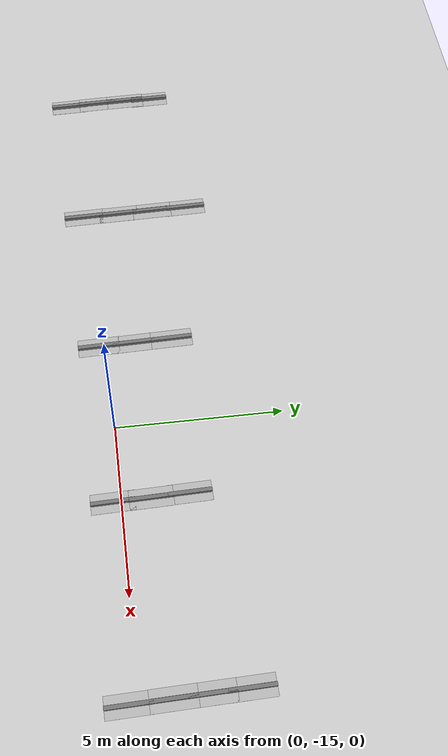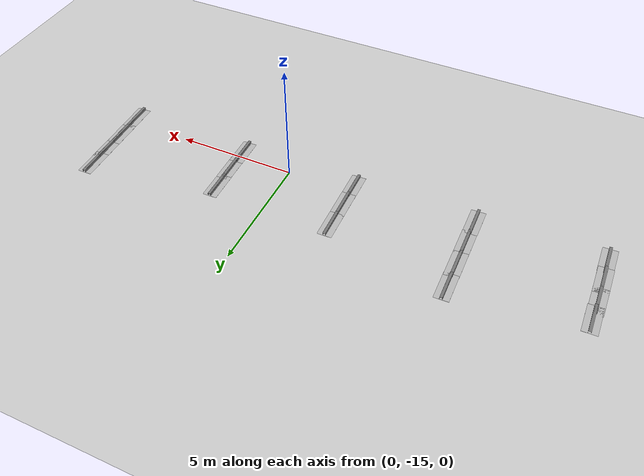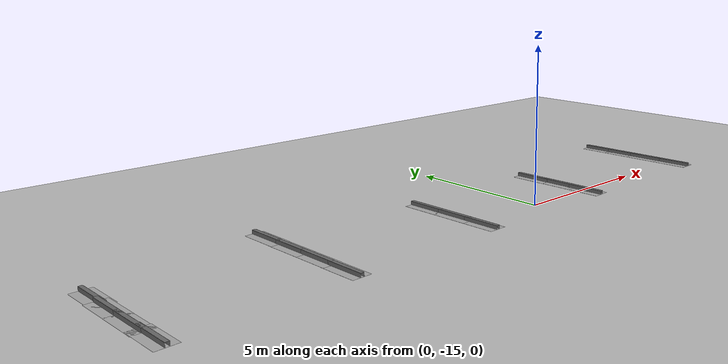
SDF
<sdf version="1.7">
 <world name="default">
  <model name="ground_plane">
   <static>1</static>
   <link name="link">
    <collision name="collision">
     <geometry><plane><normal>0 0 1</normal><size>100 100</size></plane></geometry>
     <surface>
      <contact><collide_bitmask>65535</collide_bitmask></contact>
      <friction><ode><mu>100</mu><mu2>50</mu2></ode></friction>
     </surface>
    </collision>
    <visual name="visual">
     <cast_shadows>0</cast_shadows>
     <geometry><plane><normal>0 0 1</normal><size>100 100</size></plane></geometry>
     <material>
      <script><uri>file://media/materials/scripts/gazebo.material</uri><name>Gazebo/Grey</name></script>
     </material>
    </visual>
   </link>
  </model>
  <model name="frc2016_rockwall_clone">
   <static>1</static>
   <link name="link">
    <inertial>
     <mass>10</mass>
     <pose>0 0 0.08974 0 -0 0</pose>
     <inertia><ixx>0.327091</ixx><ixy>0</ixy><ixz>0</ixz><iyy>1.37417</iyy><iyz>0</iyz><izz>1.64109</izz></inertia>
    </inertial>
    <visual name="platform">
     <pose>0 0 0.06432 0 -0 0</pose>
     <geometry><box><size>1.27 0.5969 0.003175</size></box></geometry>
    </visual>
    <collision name="platform">
     <pose>0 0 0.06432 0 -0 0</pose>
     <geometry><box><size>1.27 0.5969 0.003175</size></box></geometry>
    </collision>
    <visual name="up1">
     <pose>0 0.05166 0.12537 0 -0 0</pose>
     <geometry><box><size>1.27 0.00462 0.11892</size></box></geometry>
     <material><ambient>0.46 0.46 0.46 1</ambient><diffuse>0.46 0.46 0.46 1</diffuse></material>
    </visual>
    <collision name="up1">
     <pose>0 0.05166 0.12537 0 -0 0</pose>
     <geometry><box><size>1.27 0.00462 0.11892</size></box></geometry>
    </collision>
    <visual name="up2">
     <pose>0 -0.05801 0.12537 0 -0 0</pose>
     <geometry><box><size>1.27 0.00462 0.11892</size></box></geometry>
     <material><ambient>0.46 0.46 0.46 1</ambient><diffuse>0.46 0.46 0.46 1</diffuse></material>
    </visual>
    <collision name="up2">
     <pose>0 -0.05801 0.12537 0 -0 0</pose>
     <geometry><box><size>1.27 0.00462 0.11892</size></box></geometry>
    </collision>
    <visual name="top">
     <pose>0 -0.00249 0.18252 0 -0 0</pose>
     <geometry><box><size>1.27 0.1143 0.00462</size></box></geometry>
     <material><ambient>0.46 0.46 0.46 1</ambient><diffuse>0.46 0.46 0.46 1</diffuse></material>
    </visual>
    <collision name="top">
     <pose>0 -0.00249 0.18252 0 -0 0</pose>
     <geometry><box><size>1.27 0.1143 0.00462</size></box></geometry>
    </collision>
   </link>
   <pose>7.6081 -12.0702 0 0 -0 1.59626</pose>
  </model>
  <model name="frc2016_rockwall_clone_0">
   <static>1</static>
   <link name="link">
    <inertial>
     <mass>10</mass>
     <pose>0 0 0.08974 0 -0 0</pose>
     <inertia><ixx>0.327091</ixx><ixy>0</ixy><ixz>0</ixz><iyy>1.37417</iyy><iyz>0</iyz><izz>1.64109</izz></inertia>
    </inertial>
    <visual name="platform">
     <pose>0 0 0.06432 0 -0 0</pose>
     <geometry><box><size>1.27 0.5969 0.003175</size></box></geometry>
    </visual>
    <collision name="platform">
     <pose>0 0 0.06432 0 -0 0</pose>
     <geometry><box><size>1.27 0.5969 0.003175</size></box></geometry>
    </collision>
    <visual name="up1">
     <pose>0 0.05166 0.12537 0 -0 0</pose>
     <geometry><box><size>1.27 0.00462 0.11892</size></box></geometry>
     <material><ambient>0.46 0.46 0.46 1</ambient><diffuse>0.46 0.46 0.46 1</diffuse></material>
    </visual>
    <collision name="up1">
     <pose>0 0.05166 0.12537 0 -0 0</pose>
     <geometry><box><size>1.27 0.00462 0.11892</size></box></geometry>
    </collision>
    <visual name="up2">
     <pose>0 -0.05801 0.12537 0 -0 0</pose>
     <geometry><box><size>1.27 0.00462 0.11892</size></box></geometry>
     <material><ambient>0.46 0.46 0.46 1</ambient><diffuse>0.46 0.46 0.46 1</diffuse></material>
    </visual>
    <collision name="up2">
     <pose>0 -0.05801 0.12537 0 -0 0</pose>
     <geometry><box><size>1.27 0.00462 0.11892</size></box></geometry>
    </collision>
    <visual name="top">
     <pose>0 -0.00249 0.18252 0 -0 0</pose>
     <geometry><box><size>1.27 0.1143 0.00462</size></box></geometry>
     <material><ambient>0.46 0.46 0.46 1</ambient><diffuse>0.46 0.46 0.46 1</diffuse></material>
    </visual>
    <collision name="top">
     <pose>0 -0.00249 0.18252 0 -0 0</pose>
     <geometry><box><size>1.27 0.1143 0.00462</size></box></geometry>
    </collision>
   </link>
   <pose>7.63123 -13.0973 0 0 -0 1.59626</pose>
  </model>
  <model name="frc2016_rockwall_clone_1">
   <static>1</static>
   <link name="link">
    <inertial>
     <mass>10</mass>
     <pose>0 0 0.08974 0 -0 0</pose>
     <inertia><ixx>0.327091</ixx><ixy>0</ixy><ixz>0</ixz><iyy>1.37417</iyy><iyz>0</iyz><izz>1.64109</izz></inertia>
    </inertial>
    <visual name="platform">
     <pose>0 0 0.06432 0 -0 0</pose>
     <geometry><box><size>1.27 0.5969 0.003175</size></box></geometry>
    </visual>
    <collision name="platform">
     <pose>0 0 0.06432 0 -0 0</pose>
     <geometry><box><size>1.27 0.5969 0.003175</size></box></geometry>
    </collision>
    <visual name="up1">
     <pose>0 0.05166 0.12537 0 -0 0</pose>
     <geometry><box><size>1.27 0.00462 0.11892</size></box></geometry>
     <material><ambient>0.46 0.46 0.46 1</ambient><diffuse>0.46 0.46 0.46 1</diffuse></material>
    </visual>
    <collision name="up1">
     <pose>0 0.05166 0.12537 0 -0 0</pose>
     <geometry><box><size>1.27 0.00462 0.11892</size></box></geometry>
    </collision>
    <visual name="up2">
     <pose>0 -0.05801 0.12537 0 -0 0</pose>
     <geometry><box><size>1.27 0.00462 0.11892</size></box></geometry>
     <material><ambient>0.46 0.46 0.46 1</ambient><diffuse>0.46 0.46 0.46 1</diffuse></material>
    </visual>
    <collision name="up2">
     <pose>0 -0.05801 0.12537 0 -0 0</pose>
     <geometry><box><size>1.27 0.00462 0.11892</size></box></geometry>
    </collision>
    <visual name="top">
     <pose>0 -0.00249 0.18252 0 -0 0</pose>
     <geometry><box><size>1.27 0.1143 0.00462</size></box></geometry>
     <material><ambient>0.46 0.46 0.46 1</ambient><diffuse>0.46 0.46 0.46 1</diffuse></material>
    </visual>
    <collision name="top">
     <pose>0 -0.00249 0.18252 0 -0 0</pose>
     <geometry><box><size>1.27 0.1143 0.00462</size></box></geometry>
    </collision>
   </link>
   <pose>7.65475 -14.1018 0 0 -0 1.59626</pose>
  </model>
  <model name="frc2016_rockwall_clone_2">
   <static>1</static>
   <link name="link">
    <inertial>
     <mass>10</mass>
     <pose>0 0 0.08974 0 -0 0</pose>
     <inertia><ixx>0.327091</ixx><ixy>0</ixy><ixz>0</ixz><iyy>1.37417</iyy><iyz>0</iyz><izz>1.64109</izz></inertia>
    </inertial>
    <visual name="platform">
     <pose>0 0 0.06432 0 -0 0</pose>
     <geometry><box><size>1.27 0.5969 0.003175</size></box></geometry>
    </visual>
    <collision name="platform">
     <pose>0 0 0.06432 0 -0 0</pose>
     <geometry><box><size>1.27 0.5969 0.003175</size></box></geometry>
    </collision>
    <visual name="up1">
     <pose>0 0.05166 0.12537 0 -0 0</pose>
     <geometry><box><size>1.27 0.00462 0.11892</size></box></geometry>
     <material><ambient>0.46 0.46 0.46 1</ambient><diffuse>0.46 0.46 0.46 1</diffuse></material>
    </visual>
    <collision name="up1">
     <pose>0 0.05166 0.12537 0 -0 0</pose>
     <geometry><box><size>1.27 0.00462 0.11892</size></box></geometry>
    </collision>
    <visual name="up2">
     <pose>0 -0.05801 0.12537 0 -0 0</pose>
     <geometry><box><size>1.27 0.00462 0.11892</size></box></geometry>
     <material><ambient>0.46 0.46 0.46 1</ambient><diffuse>0.46 0.46 0.46 1</diffuse></material>
    </visual>
    <collision name="up2">
     <pose>0 -0.05801 0.12537 0 -0 0</pose>
     <geometry><box><size>1.27 0.00462 0.11892</size></box></geometry>
    </collision>
    <visual name="top">
     <pose>0 -0.00249 0.18252 0 -0 0</pose>
     <geometry><box><size>1.27 0.1143 0.00462</size></box></geometry>
     <material><ambient>0.46 0.46 0.46 1</ambient><diffuse>0.46 0.46 0.46 1</diffuse></material>
    </visual>
    <collision name="top">
     <pose>0 -0.00249 0.18252 0 -0 0</pose>
     <geometry><box><size>1.27 0.1143 0.00462</size></box></geometry>
    </collision>
   </link>
   <pose>7.68671 -15.2564 0 0 -0 1.59626</pose>
  </model>
  <model name="frc2016_rockwall_clone_8">
   <static>1</static>
   <link name="link">
    <inertial>
     <mass>10</mass>
     <pose>0 0 0.08974 0 -0 0</pose>
     <inertia><ixx>0.327091</ixx><ixy>0</ixy><ixz>0</ixz><iyy>1.37417</iyy><iyz>0</iyz><izz>1.64109</izz></inertia>
    </inertial>
    <visual name="platform">
     <pose>0 0 0.06432 0 -0 0</pose>
     <geometry><box><size>1.27 0.5969 0.003175</size></box></geometry>
    </visual>
    <collision name="platform">
     <pose>0 0 0.06432 0 -0 0</pose>
     <geometry><box><size>1.27 0.5969 0.003175</size></box></geometry>
    </collision>
    <visual name="up1">
     <pose>0 0.05166 0.12537 0 -0 0</pose>
     <geometry><box><size>1.27 0.00462 0.11892</size></box></geometry>
     <material><ambient>0.46 0.46 0.46 1</ambient><diffuse>0.46 0.46 0.46 1</diffuse></material>
    </visual>
    <collision name="up1">
     <pose>0 0.05166 0.12537 0 -0 0</pose>
     <geometry><box><size>1.27 0.00462 0.11892</size></box></geometry>
    </collision>
    <visual name="up2">
     <pose>0 -0.05801 0.12537 0 -0 0</pose>
     <geometry><box><size>1.27 0.00462 0.11892</size></box></geometry>
     <material><ambient>0.46 0.46 0.46 1</ambient><diffuse>0.46 0.46 0.46 1</diffuse></material>
    </visual>
    <collision name="up2">
     <pose>0 -0.05801 0.12537 0 -0 0</pose>
     <geometry><box><size>1.27 0.00462 0.11892</size></box></geometry>
    </collision>
    <visual name="top">
     <pose>0 -0.00249 0.18252 0 -0 0</pose>
     <geometry><box><size>1.27 0.1143 0.00462</size></box></geometry>
     <material><ambient>0.46 0.46 0.46 1</ambient><diffuse>0.46 0.46 0.46 1</diffuse></material>
    </visual>
    <collision name="top">
     <pose>0 -0.00249 0.18252 0 -0 0</pose>
     <geometry><box><size>1.27 0.1143 0.00462</size></box></geometry>
    </collision>
   </link>
   <pose>2.25442 -13.0397 0 0 -0 1.59626</pose>
  </model>
  <model name="frc2016_rockwall_clone_9">
   <static>1</static>
   <link name="link">
    <inertial>
     <mass>10</mass>
     <pose>0 0 0.08974 0 -0 0</pose>
     <inertia><ixx>0.327091</ixx><ixy>0</ixy><ixz>0</ixz><iyy>1.37417</iyy><iyz>0</iyz><izz>1.64109</izz></inertia>
    </inertial>
    <visual name="platform">
     <pose>0 0 0.06432 0 -0 0</pose>
     <geometry><box><size>1.27 0.5969 0.003175</size></box></geometry>
    </visual>
    <collision name="platform">
     <pose>0 0 0.06432 0 -0 0</pose>
     <geometry><box><size>1.27 0.5969 0.003175</size></box></geometry>
    </collision>
    <visual name="up1">
     <pose>0 0.05166 0.12537 0 -0 0</pose>
     <geometry><box><size>1.27 0.00462 0.11892</size></box></geometry>
     <material><ambient>0.46 0.46 0.46 1</ambient><diffuse>0.46 0.46 0.46 1</diffuse></material>
    </visual>
    <collision name="up1">
     <pose>0 0.05166 0.12537 0 -0 0</pose>
     <geometry><box><size>1.27 0.00462 0.11892</size></box></geometry>
    </collision>
    <visual name="up2">
     <pose>0 -0.05801 0.12537 0 -0 0</pose>
     <geometry><box><size>1.27 0.00462 0.11892</size></box></geometry>
     <material><ambient>0.46 0.46 0.46 1</ambient><diffuse>0.46 0.46 0.46 1</diffuse></material>
    </visual>
    <collision name="up2">
     <pose>0 -0.05801 0.12537 0 -0 0</pose>
     <geometry><box><size>1.27 0.00462 0.11892</size></box></geometry>
    </collision>
    <visual name="top">
     <pose>0 -0.00249 0.18252 0 -0 0</pose>
     <geometry><box><size>1.27 0.1143 0.00462</size></box></geometry>
     <material><ambient>0.46 0.46 0.46 1</ambient><diffuse>0.46 0.46 0.46 1</diffuse></material>
    </visual>
    <collision name="top">
     <pose>0 -0.00249 0.18252 0 -0 0</pose>
     <geometry><box><size>1.27 0.1143 0.00462</size></box></geometry>
    </collision>
   </link>
   <pose>2.28903 -14.1449 0 0 -0 1.59626</pose>
  </model>
  <model name="frc2016_rockwall_clone_10">
   <static>1</static>
   <link name="link">
    <inertial>
     <mass>10</mass>
     <pose>0 0 0.08974 0 -0 0</pose>
     <inertia><ixx>0.327091</ixx><ixy>0</ixy><ixz>0</ixz><iyy>1.37417</iyy><iyz>0</iyz><izz>1.64109</izz></inertia>
    </inertial>
    <visual name="platform">
     <pose>0 0 0.06432 0 -0 0</pose>
     <geometry><box><size>1.27 0.5969 0.003175</size></box></geometry>
    </visual>
    <collision name="platform">
     <pose>0 0 0.06432 0 -0 0</pose>
     <geometry><box><size>1.27 0.5969 0.003175</size></box></geometry>
    </collision>
    <visual name="up1">
     <pose>0 0.05166 0.12537 0 -0 0</pose>
     <geometry><box><size>1.27 0.00462 0.11892</size></box></geometry>
     <material><ambient>0.46 0.46 0.46 1</ambient><diffuse>0.46 0.46 0.46 1</diffuse></material>
    </visual>
    <collision name="up1">
     <pose>0 0.05166 0.12537 0 -0 0</pose>
     <geometry><box><size>1.27 0.00462 0.11892</size></box></geometry>
    </collision>
    <visual name="up2">
     <pose>0 -0.05801 0.12537 0 -0 0</pose>
     <geometry><box><size>1.27 0.00462 0.11892</size></box></geometry>
     <material><ambient>0.46 0.46 0.46 1</ambient><diffuse>0.46 0.46 0.46 1</diffuse></material>
    </visual>
    <collision name="up2">
     <pose>0 -0.05801 0.12537 0 -0 0</pose>
     <geometry><box><size>1.27 0.00462 0.11892</size></box></geometry>
    </collision>
    <visual name="top">
     <pose>0 -0.00249 0.18252 0 -0 0</pose>
     <geometry><box><size>1.27 0.1143 0.00462</size></box></geometry>
     <material><ambient>0.46 0.46 0.46 1</ambient><diffuse>0.46 0.46 0.46 1</diffuse></material>
    </visual>
    <collision name="top">
     <pose>0 -0.00249 0.18252 0 -0 0</pose>
     <geometry><box><size>1.27 0.1143 0.00462</size></box></geometry>
    </collision>
   </link>
   <pose>2.30895 -15.2348 0 0 -0 1.59626</pose>
  </model>
  <model name="frc2016_rockwall_clone_16">
   <static>1</static>
   <link name="link">
    <inertial>
     <mass>10</mass>
     <pose>0 0 0.08974 0 -0 0</pose>
     <inertia><ixx>0.327091</ixx><ixy>0</ixy><ixz>0</ixz><iyy>1.37417</iyy><iyz>0</iyz><izz>1.64109</izz></inertia>
    </inertial>
    <visual name="platform">
     <pose>0 0 0.06432 0 -0 0</pose>
     <geometry><box><size>1.27 0.5969 0.003175</size></box></geometry>
    </visual>
    <collision name="platform">
     <pose>0 0 0.06432 0 -0 0</pose>
     <geometry><box><size>1.27 0.5969 0.003175</size></box></geometry>
    </collision>
    <visual name="up1">
     <pose>0 0.05166 0.12537 0 -0 0</pose>
     <geometry><box><size>1.27 0.00462 0.11892</size></box></geometry>
     <material><ambient>0.46 0.46 0.46 1</ambient><diffuse>0.46 0.46 0.46 1</diffuse></material>
    </visual>
    <collision name="up1">
     <pose>0 0.05166 0.12537 0 -0 0</pose>
     <geometry><box><size>1.27 0.00462 0.11892</size></box></geometry>
    </collision>
    <visual name="up2">
     <pose>0 -0.05801 0.12537 0 -0 0</pose>
     <geometry><box><size>1.27 0.00462 0.11892</size></box></geometry>
     <material><ambient>0.46 0.46 0.46 1</ambient><diffuse>0.46 0.46 0.46 1</diffuse></material>
    </visual>
    <collision name="up2">
     <pose>0 -0.05801 0.12537 0 -0 0</pose>
     <geometry><box><size>1.27 0.00462 0.11892</size></box></geometry>
    </collision>
    <visual name="top">
     <pose>0 -0.00249 0.18252 0 -0 0</pose>
     <geometry><box><size>1.27 0.1143 0.00462</size></box></geometry>
     <material><ambient>0.46 0.46 0.46 1</ambient><diffuse>0.46 0.46 0.46 1</diffuse></material>
    </visual>
    <collision name="top">
     <pose>0 -0.00249 0.18252 0 -0 0</pose>
     <geometry><box><size>1.27 0.1143 0.00462</size></box></geometry>
    </collision>
   </link>
   <pose>-2.78684 -13.0226 0 0 -0 1.59626</pose>
  </model>
  <model name="frc2016_rockwall_clone_17">
   <static>1</static>
   <link name="link">
    <inertial>
     <mass>10</mass>
     <pose>0 0 0.08974 0 -0 0</pose>
     <inertia><ixx>0.327091</ixx><ixy>0</ixy><ixz>0</ixz><iyy>1.37417</iyy><iyz>0</iyz><izz>1.64109</izz></inertia>
    </inertial>
    <visual name="platform">
     <pose>0 0 0.06432 0 -0 0</pose>
     <geometry><box><size>1.27 0.5969 0.003175</size></box></geometry>
    </visual>
    <collision name="platform">
     <pose>0 0 0.06432 0 -0 0</pose>
     <geometry><box><size>1.27 0.5969 0.003175</size></box></geometry>
    </collision>
    <visual name="up1">
     <pose>0 0.05166 0.12537 0 -0 0</pose>
     <geometry><box><size>1.27 0.00462 0.11892</size></box></geometry>
     <material><ambient>0.46 0.46 0.46 1</ambient><diffuse>0.46 0.46 0.46 1</diffuse></material>
    </visual>
    <collision name="up1">
     <pose>0 0.05166 0.12537 0 -0 0</pose>
     <geometry><box><size>1.27 0.00462 0.11892</size></box></geometry>
    </collision>
    <visual name="up2">
     <pose>0 -0.05801 0.12537 0 -0 0</pose>
     <geometry><box><size>1.27 0.00462 0.11892</size></box></geometry>
     <material><ambient>0.46 0.46 0.46 1</ambient><diffuse>0.46 0.46 0.46 1</diffuse></material>
    </visual>
    <collision name="up2">
     <pose>0 -0.05801 0.12537 0 -0 0</pose>
     <geometry><box><size>1.27 0.00462 0.11892</size></box></geometry>
    </collision>
    <visual name="top">
     <pose>0 -0.00249 0.18252 0 -0 0</pose>
     <geometry><box><size>1.27 0.1143 0.00462</size></box></geometry>
     <material><ambient>0.46 0.46 0.46 1</ambient><diffuse>0.46 0.46 0.46 1</diffuse></material>
    </visual>
    <collision name="top">
     <pose>0 -0.00249 0.18252 0 -0 0</pose>
     <geometry><box><size>1.27 0.1143 0.00462</size></box></geometry>
    </collision>
   </link>
   <pose>-2.75795 -14.2058 0 0 -0 1.59626</pose>
  </model>
  <model name="frc2016_rockwall_clone_18">
   <static>1</static>
   <link name="link">
    <inertial>
     <mass>10</mass>
     <pose>0 0 0.08974 0 -0 0</pose>
     <inertia><ixx>0.327091</ixx><ixy>0</ixy><ixz>0</ixz><iyy>1.37417</iyy><iyz>0</iyz><izz>1.64109</izz></inertia>
    </inertial>
    <visual name="platform">
     <pose>0 0 0.06432 0 -0 0</pose>
     <geometry><box><size>1.27 0.5969 0.003175</size></box></geometry>
    </visual>
    <collision name="platform">
     <pose>0 0 0.06432 0 -0 0</pose>
     <geometry><box><size>1.27 0.5969 0.003175</size></box></geometry>
    </collision>
    <visual name="up1">
     <pose>0 0.05166 0.12537 0 -0 0</pose>
     <geometry><box><size>1.27 0.00462 0.11892</size></box></geometry>
     <material><ambient>0.46 0.46 0.46 1</ambient><diffuse>0.46 0.46 0.46 1</diffuse></material>
    </visual>
    <collision name="up1">
     <pose>0 0.05166 0.12537 0 -0 0</pose>
     <geometry><box><size>1.27 0.00462 0.11892</size></box></geometry>
    </collision>
    <visual name="up2">
     <pose>0 -0.05801 0.12537 0 -0 0</pose>
     <geometry><box><size>1.27 0.00462 0.11892</size></box></geometry>
     <material><ambient>0.46 0.46 0.46 1</ambient><diffuse>0.46 0.46 0.46 1</diffuse></material>
    </visual>
    <collision name="up2">
     <pose>0 -0.05801 0.12537 0 -0 0</pose>
     <geometry><box><size>1.27 0.00462 0.11892</size></box></geometry>
    </collision>
    <visual name="top">
     <pose>0 -0.00249 0.18252 0 -0 0</pose>
     <geometry><box><size>1.27 0.1143 0.00462</size></box></geometry>
     <material><ambient>0.46 0.46 0.46 1</ambient><diffuse>0.46 0.46 0.46 1</diffuse></material>
    </visual>
    <collision name="top">
     <pose>0 -0.00249 0.18252 0 -0 0</pose>
     <geometry><box><size>1.27 0.1143 0.00462</size></box></geometry>
    </collision>
   </link>
   <pose>-2.73758 -15.2758 0 0 -0 1.59626</pose>
  </model>
  <model name="frc2016_rockwall_clone_24">
   <static>1</static>
   <link name="link">
    <inertial>
     <mass>10</mass>
     <pose>0 0 0.08974 0 -0 0</pose>
     <inertia><ixx>0.327091</ixx><ixy>0</ixy><ixz>0</ixz><iyy>1.37417</iyy><iyz>0</iyz><izz>1.64109</izz></inertia>
    </inertial>
    <visual name="platform">
     <pose>0 0 0.06432 0 -0 0</pose>
     <geometry><box><size>1.27 0.5969 0.003175</size></box></geometry>
    </visual>
    <collision name="platform">
     <pose>0 0 0.06432 0 -0 0</pose>
     <geometry><box><size>1.27 0.5969 0.003175</size></box></geometry>
    </collision>
    <visual name="up1">
     <pose>0 0.05166 0.12537 0 -0 0</pose>
     <geometry><box><size>1.27 0.00462 0.11892</size></box></geometry>
     <material><ambient>0.46 0.46 0.46 1</ambient><diffuse>0.46 0.46 0.46 1</diffuse></material>
    </visual>
    <collision name="up1">
     <pose>0 0.05166 0.12537 0 -0 0</pose>
     <geometry><box><size>1.27 0.00462 0.11892</size></box></geometry>
    </collision>
    <visual name="up2">
     <pose>0 -0.05801 0.12537 0 -0 0</pose>
     <geometry><box><size>1.27 0.00462 0.11892</size></box></geometry>
     <material><ambient>0.46 0.46 0.46 1</ambient><diffuse>0.46 0.46 0.46 1</diffuse></material>
    </visual>
    <collision name="up2">
     <pose>0 -0.05801 0.12537 0 -0 0</pose>
     <geometry><box><size>1.27 0.00462 0.11892</size></box></geometry>
    </collision>
    <visual name="top">
     <pose>0 -0.00249 0.18252 0 -0 0</pose>
     <geometry><box><size>1.27 0.1143 0.00462</size></box></geometry>
     <material><ambient>0.46 0.46 0.46 1</ambient><diffuse>0.46 0.46 0.46 1</diffuse></material>
    </visual>
    <collision name="top">
     <pose>0 -0.00249 0.18252 0 -0 0</pose>
     <geometry><box><size>1.27 0.1143 0.00462</size></box></geometry>
    </collision>
   </link>
   <pose>-7.80858 -12.0017 0 0 -0 1.59626</pose>
  </model>
  <model name="frc2016_rockwall_clone_25">
   <static>1</static>
   <link name="link">
    <inertial>
     <mass>10</mass>
     <pose>0 0 0.08974 0 -0 0</pose>
     <inertia><ixx>0.327091</ixx><ixy>0</ixy><ixz>0</ixz><iyy>1.37417</iyy><iyz>0</iyz><izz>1.64109</izz></inertia>
    </inertial>
    <visual name="platform">
     <pose>0 0 0.06432 0 -0 0</pose>
     <geometry><box><size>1.27 0.5969 0.003175</size></box></geometry>
    </visual>
    <collision name="platform">
     <pose>0 0 0.06432 0 -0 0</pose>
     <geometry><box><size>1.27 0.5969 0.003175</size></box></geometry>
    </collision>
    <visual name="up1">
     <pose>0 0.05166 0.12537 0 -0 0</pose>
     <geometry><box><size>1.27 0.00462 0.11892</size></box></geometry>
     <material><ambient>0.46 0.46 0.46 1</ambient><diffuse>0.46 0.46 0.46 1</diffuse></material>
    </visual>
    <collision name="up1">
     <pose>0 0.05166 0.12537 0 -0 0</pose>
     <geometry><box><size>1.27 0.00462 0.11892</size></box></geometry>
    </collision>
    <visual name="up2">
     <pose>0 -0.05801 0.12537 0 -0 0</pose>
     <geometry><box><size>1.27 0.00462 0.11892</size></box></geometry>
     <material><ambient>0.46 0.46 0.46 1</ambient><diffuse>0.46 0.46 0.46 1</diffuse></material>
    </visual>
    <collision name="up2">
     <pose>0 -0.05801 0.12537 0 -0 0</pose>
     <geometry><box><size>1.27 0.00462 0.11892</size></box></geometry>
    </collision>
    <visual name="top">
     <pose>0 -0.00249 0.18252 0 -0 0</pose>
     <geometry><box><size>1.27 0.1143 0.00462</size></box></geometry>
     <material><ambient>0.46 0.46 0.46 1</ambient><diffuse>0.46 0.46 0.46 1</diffuse></material>
    </visual>
    <collision name="top">
     <pose>0 -0.00249 0.18252 0 -0 0</pose>
     <geometry><box><size>1.27 0.1143 0.00462</size></box></geometry>
    </collision>
   </link>
   <pose>-7.78947 -13.1379 0 0 -0 1.59626</pose>
  </model>
  <model name="frc2016_rockwall_clone_26">
   <static>1</static>
   <link name="link">
    <inertial>
     <mass>10</mass>
     <pose>0 0 0.08974 0 -0 0</pose>
     <inertia><ixx>0.327091</ixx><ixy>0</ixy><ixz>0</ixz><iyy>1.37417</iyy><iyz>0</iyz><izz>1.64109</izz></inertia>
    </inertial>
    <visual name="platform">
     <pose>0 0 0.06432 0 -0 0</pose>
     <geometry><box><size>1.27 0.5969 0.003175</size></box></geometry>
    </visual>
    <collision name="platform">
     <pose>0 0 0.06432 0 -0 0</pose>
     <geometry><box><size>1.27 0.5969 0.003175</size></box></geometry>
    </collision>
    <visual name="up1">
     <pose>0 0.05166 0.12537 0 -0 0</pose>
     <geometry><box><size>1.27 0.00462 0.11892</size></box></geometry>
     <material><ambient>0.46 0.46 0.46 1</ambient><diffuse>0.46 0.46 0.46 1</diffuse></material>
    </visual>
    <collision name="up1">
     <pose>0 0.05166 0.12537 0 -0 0</pose>
     <geometry><box><size>1.27 0.00462 0.11892</size></box></geometry>
    </collision>
    <visual name="up2">
     <pose>0 -0.05801 0.12537 0 -0 0</pose>
     <geometry><box><size>1.27 0.00462 0.11892</size></box></geometry>
     <material><ambient>0.46 0.46 0.46 1</ambient><diffuse>0.46 0.46 0.46 1</diffuse></material>
    </visual>
    <collision name="up2">
     <pose>0 -0.05801 0.12537 0 -0 0</pose>
     <geometry><box><size>1.27 0.00462 0.11892</size></box></geometry>
    </collision>
    <visual name="top">
     <pose>0 -0.00249 0.18252 0 -0 0</pose>
     <geometry><box><size>1.27 0.1143 0.00462</size></box></geometry>
     <material><ambient>0.46 0.46 0.46 1</ambient><diffuse>0.46 0.46 0.46 1</diffuse></material>
    </visual>
    <collision name="top">
     <pose>0 -0.00249 0.18252 0 -0 0</pose>
     <geometry><box><size>1.27 0.1143 0.00462</size></box></geometry>
    </collision>
   </link>
   <pose>-7.76321 -14.271 0 0 -0 1.59626</pose>
  </model>
  <model name="frc2016_rockwall_clone_27">
   <static>1</static>
   <link name="link">
    <inertial>
     <mass>10</mass>
     <pose>0 0 0.08974 0 -0 0</pose>
     <inertia><ixx>0.327091</ixx><ixy>0</ixy><ixz>0</ixz><iyy>1.37417</iyy><iyz>0</iyz><izz>1.64109</izz></inertia>
    </inertial>
    <visual name="platform">
     <pose>0 0 0.06432 0 -0 0</pose>
     <geometry><box><size>1.27 0.5969 0.003175</size></box></geometry>
    </visual>
    <collision name="platform">
     <pose>0 0 0.06432 0 -0 0</pose>
     <geometry><box><size>1.27 0.5969 0.003175</size></box></geometry>
    </collision>
    <visual name="up1">
     <pose>0 0.05166 0.12537 0 -0 0</pose>
     <geometry><box><size>1.27 0.00462 0.11892</size></box></geometry>
     <material><ambient>0.46 0.46 0.46 1</ambient><diffuse>0.46 0.46 0.46 1</diffuse></material>
    </visual>
    <collision name="up1">
     <pose>0 0.05166 0.12537 0 -0 0</pose>
     <geometry><box><size>1.27 0.00462 0.11892</size></box></geometry>
    </collision>
    <visual name="up2">
     <pose>0 -0.05801 0.12537 0 -0 0</pose>
     <geometry><box><size>1.27 0.00462 0.11892</size></box></geometry>
     <material><ambient>0.46 0.46 0.46 1</ambient><diffuse>0.46 0.46 0.46 1</diffuse></material>
    </visual>
    <collision name="up2">
     <pose>0 -0.05801 0.12537 0 -0 0</pose>
     <geometry><box><size>1.27 0.00462 0.11892</size></box></geometry>
    </collision>
    <visual name="top">
     <pose>0 -0.00249 0.18252 0 -0 0</pose>
     <geometry><box><size>1.27 0.1143 0.00462</size></box></geometry>
     <material><ambient>0.46 0.46 0.46 1</ambient><diffuse>0.46 0.46 0.46 1</diffuse></material>
    </visual>
    <collision name="top">
     <pose>0 -0.00249 0.18252 0 -0 0</pose>
     <geometry><box><size>1.27 0.1143 0.00462</size></box></geometry>
    </collision>
   </link>
   <pose>-7.74477 -15.4261 0 0 -0 1.59626</pose>
  </model>
  <model name="frc2016_rockwall_clone_35">
   <static>1</static>
   <link name="link">
    <inertial>
     <mass>10</mass>
     <pose>0 0 0.08974 0 -0 0</pose>
     <inertia><ixx>0.327091</ixx><ixy>0</ixy><ixz>0</ixz><iyy>1.37417</iyy><iyz>0</iyz><izz>1.64109</izz></inertia>
    </inertial>
    <visual name="platform">
     <pose>0 0 0.06432 0 -0 0</pose>
     <geometry><box><size>1.27 0.5969 0.003175</size></box></geometry>
    </visual>
    <collision name="platform">
     <pose>0 0 0.06432 0 -0 0</pose>
     <geometry><box><size>1.27 0.5969 0.003175</size></box></geometry>
    </collision>
    <visual name="up1">
     <pose>0 0.05166 0.12537 0 -0 0</pose>
     <geometry><box><size>1.27 0.00462 0.11892</size></box></geometry>
     <material><ambient>0.46 0.46 0.46 1</ambient><diffuse>0.46 0.46 0.46 1</diffuse></material>
    </visual>
    <collision name="up1">
     <pose>0 0.05166 0.12537 0 -0 0</pose>
     <geometry><box><size>1.27 0.00462 0.11892</size></box></geometry>
    </collision>
    <visual name="up2">
     <pose>0 -0.05801 0.12537 0 -0 0</pose>
     <geometry><box><size>1.27 0.00462 0.11892</size></box></geometry>
     <material><ambient>0.46 0.46 0.46 1</ambient><diffuse>0.46 0.46 0.46 1</diffuse></material>
    </visual>
    <collision name="up2">
     <pose>0 -0.05801 0.12537 0 -0 0</pose>
     <geometry><box><size>1.27 0.00462 0.11892</size></box></geometry>
    </collision>
    <visual name="top">
     <pose>0 -0.00249 0.18252 0 -0 0</pose>
     <geometry><box><size>1.27 0.1143 0.00462</size></box></geometry>
     <material><ambient>0.46 0.46 0.46 1</ambient><diffuse>0.46 0.46 0.46 1</diffuse></material>
    </visual>
    <collision name="top">
     <pose>0 -0.00249 0.18252 0 -0 0</pose>
     <geometry><box><size>1.27 0.1143 0.00462</size></box></geometry>
    </collision>
   </link>
   <pose>-12.8415 -12.7513 0 0 -0 1.59626</pose>
  </model>
  <model name="frc2016_rockwall_clone_36">
   <static>1</static>
   <link name="link">
    <inertial>
     <mass>10</mass>
     <pose>0 0 0.08974 0 -0 0</pose>
     <inertia><ixx>0.327091</ixx><ixy>0</ixy><ixz>0</ixz><iyy>1.37417</iyy><iyz>0</iyz><izz>1.64109</izz></inertia>
    </inertial>
    <visual name="platform">
     <pose>0 0 0.06432 0 -0 0</pose>
     <geometry><box><size>1.27 0.5969 0.003175</size></box></geometry>
    </visual>
    <collision name="platform">
     <pose>0 0 0.06432 0 -0 0</pose>
     <geometry><box><size>1.27 0.5969 0.003175</size></box></geometry>
    </collision>
    <visual name="up1">
     <pose>0 0.05166 0.12537 0 -0 0</pose>
     <geometry><box><size>1.27 0.00462 0.11892</size></box></geometry>
     <material><ambient>0.46 0.46 0.46 1</ambient><diffuse>0.46 0.46 0.46 1</diffuse></material>
    </visual>
    <collision name="up1">
     <pose>0 0.05166 0.12537 0 -0 0</pose>
     <geometry><box><size>1.27 0.00462 0.11892</size></box></geometry>
    </collision>
    <visual name="up2">
     <pose>0 -0.05801 0.12537 0 -0 0</pose>
     <geometry><box><size>1.27 0.00462 0.11892</size></box></geometry>
     <material><ambient>0.46 0.46 0.46 1</ambient><diffuse>0.46 0.46 0.46 1</diffuse></material>
    </visual>
    <collision name="up2">
     <pose>0 -0.05801 0.12537 0 -0 0</pose>
     <geometry><box><size>1.27 0.00462 0.11892</size></box></geometry>
    </collision>
    <visual name="top">
     <pose>0 -0.00249 0.18252 0 -0 0</pose>
     <geometry><box><size>1.27 0.1143 0.00462</size></box></geometry>
     <material><ambient>0.46 0.46 0.46 1</ambient><diffuse>0.46 0.46 0.46 1</diffuse></material>
    </visual>
    <collision name="top">
     <pose>0 -0.00249 0.18252 0 -0 0</pose>
     <geometry><box><size>1.27 0.1143 0.00462</size></box></geometry>
    </collision>
   </link>
   <pose>-12.8461 -13.6212 0 0 -0 1.59626</pose>
  </model>
  <model name="frc2016_rockwall_clone_37">
   <static>1</static>
   <link name="link">
    <inertial>
     <mass>10</mass>
     <pose>0 0 0.08974 0 -0 0</pose>
     <inertia><ixx>0.327091</ixx><ixy>0</ixy><ixz>0</ixz><iyy>1.37417</iyy><iyz>0</iyz><izz>1.64109</izz></inertia>
    </inertial>
    <visual name="platform">
     <pose>0 0 0.06432 0 -0 0</pose>
     <geometry><box><size>1.27 0.5969 0.003175</size></box></geometry>
    </visual>
    <collision name="platform">
     <pose>0 0 0.06432 0 -0 0</pose>
     <geometry><box><size>1.27 0.5969 0.003175</size></box></geometry>
    </collision>
    <visual name="up1">
     <pose>0 0.05166 0.12537 0 -0 0</pose>
     <geometry><box><size>1.27 0.00462 0.11892</size></box></geometry>
     <material><ambient>0.46 0.46 0.46 1</ambient><diffuse>0.46 0.46 0.46 1</diffuse></material>
    </visual>
    <collision name="up1">
     <pose>0 0.05166 0.12537 0 -0 0</pose>
     <geometry><box><size>1.27 0.00462 0.11892</size></box></geometry>
    </collision>
    <visual name="up2">
     <pose>0 -0.05801 0.12537 0 -0 0</pose>
     <geometry><box><size>1.27 0.00462 0.11892</size></box></geometry>
     <material><ambient>0.46 0.46 0.46 1</ambient><diffuse>0.46 0.46 0.46 1</diffuse></material>
    </visual>
    <collision name="up2">
     <pose>0 -0.05801 0.12537 0 -0 0</pose>
     <geometry><box><size>1.27 0.00462 0.11892</size></box></geometry>
    </collision>
    <visual name="top">
     <pose>0 -0.00249 0.18252 0 -0 0</pose>
     <geometry><box><size>1.27 0.1143 0.00462</size></box></geometry>
     <material><ambient>0.46 0.46 0.46 1</ambient><diffuse>0.46 0.46 0.46 1</diffuse></material>
    </visual>
    <collision name="top">
     <pose>0 -0.00249 0.18252 0 -0 0</pose>
     <geometry><box><size>1.27 0.1143 0.00462</size></box></geometry>
    </collision>
   </link>
   <pose>-12.8226 -14.632 0 0 -0 1.59626</pose>
  </model>
  <model name="frc2016_rockwall_clone_38">
   <static>1</static>
   <link name="link">
    <inertial>
     <mass>10</mass>
     <pose>0 0 0.08974 0 -0 0</pose>
     <inertia><ixx>0.327091</ixx><ixy>0</ixy><ixz>0</ixz><iyy>1.37417</iyy><iyz>0</iyz><izz>1.64109</izz></inertia>
    </inertial>
    <visual name="platform">
     <pose>0 0 0.06432 0 -0 0</pose>
     <geometry><box><size>1.27 0.5969 0.003175</size></box></geometry>
    </visual>
    <collision name="platform">
     <pose>0 0 0.06432 0 -0 0</pose>
     <geometry><box><size>1.27 0.5969 0.003175</size></box></geometry>
    </collision>
    <visual name="up1">
     <pose>0 0.05166 0.12537 0 -0 0</pose>
     <geometry><box><size>1.27 0.00462 0.11892</size></box></geometry>
     <material><ambient>0.46 0.46 0.46 1</ambient><diffuse>0.46 0.46 0.46 1</diffuse></material>
    </visual>
    <collision name="up1">
     <pose>0 0.05166 0.12537 0 -0 0</pose>
     <geometry><box><size>1.27 0.00462 0.11892</size></box></geometry>
    </collision>
    <visual name="up2">
     <pose>0 -0.05801 0.12537 0 -0 0</pose>
     <geometry><box><size>1.27 0.00462 0.11892</size></box></geometry>
     <material><ambient>0.46 0.46 0.46 1</ambient><diffuse>0.46 0.46 0.46 1</diffuse></material>
    </visual>
    <collision name="up2">
     <pose>0 -0.05801 0.12537 0 -0 0</pose>
     <geometry><box><size>1.27 0.00462 0.11892</size></box></geometry>
    </collision>
    <visual name="top">
     <pose>0 -0.00249 0.18252 0 -0 0</pose>
     <geometry><box><size>1.27 0.1143 0.00462</size></box></geometry>
     <material><ambient>0.46 0.46 0.46 1</ambient><diffuse>0.46 0.46 0.46 1</diffuse></material>
    </visual>
    <collision name="top">
     <pose>0 -0.00249 0.18252 0 -0 0</pose>
     <geometry><box><size>1.27 0.1143 0.00462</size></box></geometry>
    </collision>
   </link>
   <pose>-12.7827 -15.6126 0 0 -0 1.59626</pose>
  </model>
 </world>
</sdf>
